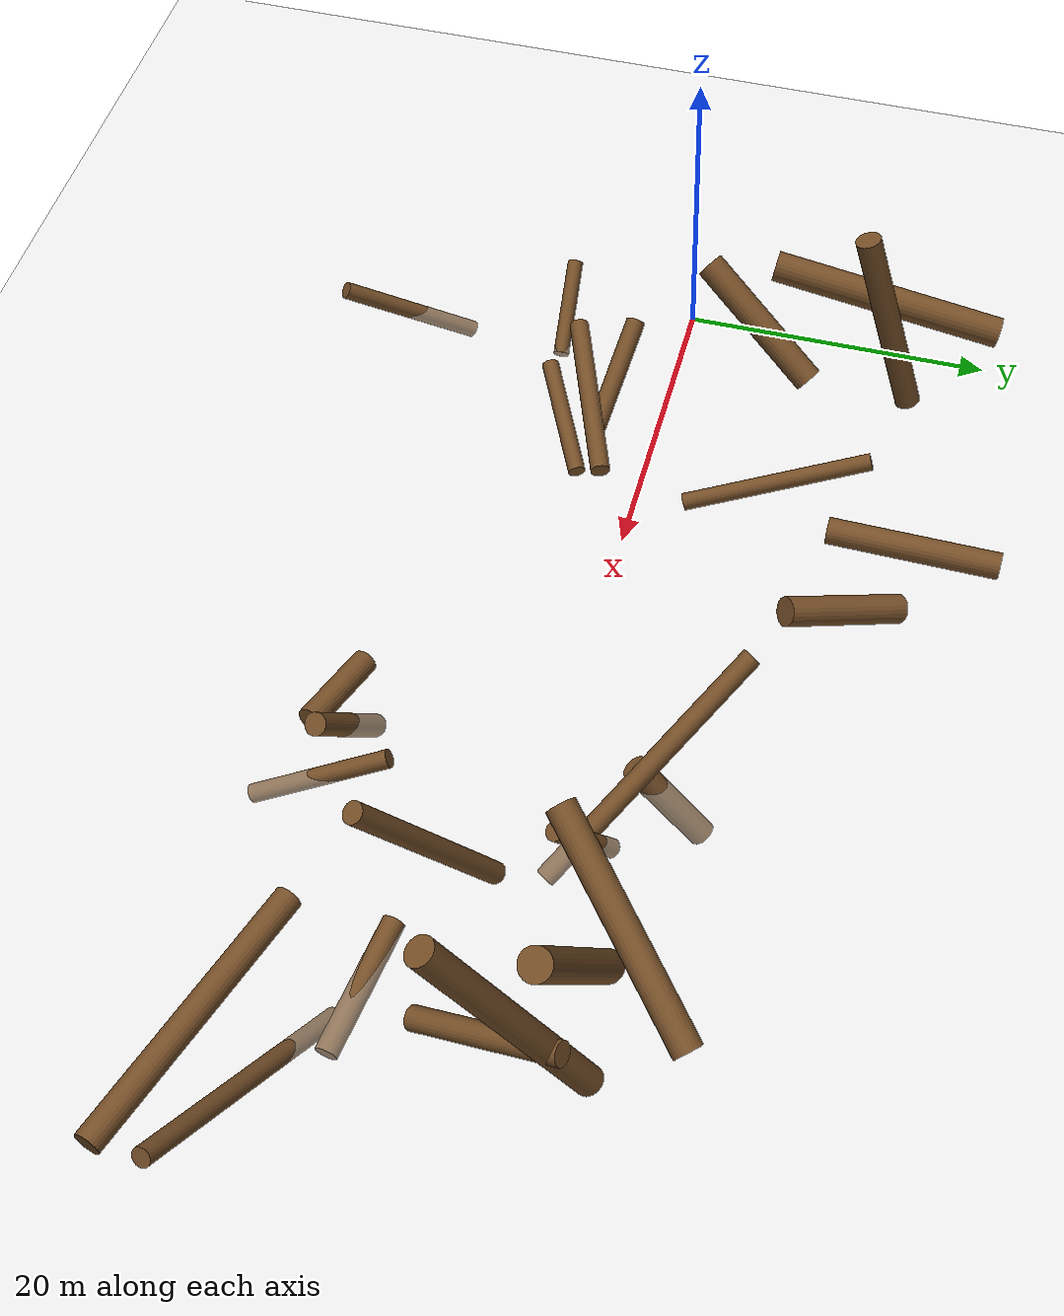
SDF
<sdf version='1.7'>
            <world name='default'>
                <light name='sun' type='directional'>
                <cast_shadows>1</cast_shadows>
                <pose>0 0 10 0 -0 0</pose>
                <diffuse>0.8 0.8 0.8 1</diffuse>
                <specular>0.2 0.2 0.2 1</specular>
                <attenuation>
                    <range>1000</range>
                    <constant>0.9</constant>
                    <linear>0.01</linear>
                    <quadratic>0.001</quadratic>
                </attenuation>
                <direction>-0.5 0.1 -0.9</direction>
                <spot>
                    <inner_angle>0</inner_angle>
                    <outer_angle>0</outer_angle>
                    <falloff>0</falloff>
                </spot>
                </light>
                <model name='ground_plane'>
                <static>1</static>
                <link name='link'>
                    <collision name='collision'>
                    <geometry>
                        <plane>
                        <normal>0 0 1</normal>
                        <size>100 100</size>
                        </plane>
                    </geometry>
                    <surface>
                        <contact>
                        <collide_bitmask>65535</collide_bitmask>
                        <ode/>
                        </contact>
                        <friction>
                        <ode>
                            <mu>100</mu>
                            <mu2>50</mu2>
                        </ode>
                        <torsional>
                            <ode/>
                        </torsional>
                        </friction>
                        <bounce/>
                    </surface>
                    <max_contacts>10</max_contacts>
                    </collision>
                    <visual name='visual'>
                    <cast_shadows>0</cast_shadows>
                    <geometry>
                        <plane>
                        <normal>0 0 1</normal>
                        <size>100 100</size>
                        </plane>
                    </geometry>
                    <material>
                        <script>
                        <uri>file://media/materials/scripts/gazebo.material</uri>
                        <name>Gazebo/Grey</name>
                        </script>
                    </material>
                    </visual>
                    <self_collide>0</self_collide>
                    <enable_wind>0</enable_wind>
                    <kinematic>0</kinematic>
                </link>
                </model>
                <gravity>0 0 -9.8</gravity>
                <magnetic_field>6e-06 2.3e-05 -4.2e-05</magnetic_field>
                <atmosphere type='adiabatic'/>
                <physics type='ode'>
                <max_step_size>0.001</max_step_size>
                <real_time_factor>1</real_time_factor>
                <real_time_update_rate>1000</real_time_update_rate>
                </physics>
                <scene>
                <ambient>0.4 0.4 0.4 1</ambient>
                <background>0.7 0.7 0.7 1</background>
                <shadows>1</shadows>
                </scene>
                <wind/>
                <spherical_coordinates>
                <surface_model>EARTH_WGS84</surface_model>
                <latitude_deg>0</latitude_deg>
                <longitude_deg>0</longitude_deg>
                <elevation>0</elevation>
                <heading_deg>0</heading_deg>
                </spherical_coordinates>
                <model name='cylinder_1'>
      <static>1</static>
      <link name='link'>
        <pose frame=''>0 0 0.1 0 -0 0</pose>
        <collision name='collision_trunk'>
          <pose frame=''>0 0 2 0 -0 0</pose>
          <geometry>
            <cylinder>
              <radius>0.788835633685678</radius>
              <length>5.665362583455713</length>
            </cylinder>
          </geometry>
        </collision>
        <visual name='trunk'>
          <pose frame=''>0 0 2 0 -0 0</pose>
          <geometry>
            <cylinder>
              <radius>0.788835633685678</radius>
              <length>5.665362583455713</length>
            </cylinder>
          </geometry>
          <material>
            <script>
              <uri>model://tree_simple/scripts</uri>
              <uri>model://tree_simple/materials/textures</uri>
              <name>TreeSimple/Trunk</name>
            </script>
          </material>
        </visual>
        <self_collide>0</self_collide>
        <kinematic>0</kinematic>
      </link>
      <pose frame=''>37.52955259395762 -14.071624767836042 0.9301232757591773 139.45076508175987 104.72209730949497 80.14829763471432</pose>
    </model>
    <model name='cylinder_2'>
      <static>1</static>
      <link name='link'>
        <pose frame=''>0 0 0.1 0 -0 0</pose>
        <collision name='collision_trunk'>
          <pose frame=''>0 0 2 0 -0 0</pose>
          <geometry>
            <cylinder>
              <radius>0.5484385414170945</radius>
          <length>12.20475519180299</length>
            </cylinder>
          </geometry>
        </collision>
        <visual name='trunk'>
          <pose frame=''>0 0 2 0 -0 0</pose>
          <geometry>
            <cylinder>
              <radius>0.5484385414170945</radius>
          <length>12.20475519180299</length>
            </cylinder>
          </geometry>
          <material>
            <script>
              <uri>model://tree_simple/scripts</uri>
              <uri>model://tree_simple/materials/textures</uri>
              <name>TreeSimple/Trunk</name>
            </script>
          </material>
        </visual>
        <self_collide>0</self_collide>
        <kinematic>0</kinematic>
      </link>
      <pose frame=''>13.882796074149844 10.681368055011081 2.438557626206517 11.584885372144708 178.00395329252245 54.22970105900112</pose>
    </model>
    <model name='cylinder_3'>
      <static>1</static>
      <link name='link'>
        <pose frame=''>0 0 0.1 0 -0 0</pose>
        <collision name='collision_trunk'>
          <pose frame=''>0 0 2 0 -0 0</pose>
          <geometry>
            <cylinder>
              <radius>0.5157186908227087</radius>
          <length>6.618720287077109</length>
            </cylinder>
          </geometry>
        </collision>
        <visual name='trunk'>
          <pose frame=''>0 0 2 0 -0 0</pose>
          <geometry>
            <cylinder>
              <radius>0.5157186908227087</radius>
          <length>6.618720287077109</length>
            </cylinder>
          </geometry>
          <material>
            <script>
              <uri>model://tree_simple/scripts</uri>
              <uri>model://tree_simple/materials/textures</uri>
              <name>TreeSimple/Trunk</name>
            </script>
          </material>
        </visual>
        <self_collide>0</self_collide>
        <kinematic>0</kinematic>
      </link>
      <pose frame=''>0.059093723049348235 -8.544475060347354 1.8358675166335177 26.22227075542884 178.71263809387543 83.15769782488621</pose>
    </model>
    <model name='cylinder_4'>
      <static>1</static>
      <link name='link'>
        <pose frame=''>0 0 0.1 0 -0 0</pose>
        <collision name='collision_trunk'>
          <pose frame=''>0 0 2 0 -0 0</pose>
          <geometry>
            <cylinder>
              <radius>0.6793858327265649</radius>
          <length>8.197996675658015</length>
            </cylinder>
          </geometry>
        </collision>
        <visual name='trunk'>
          <pose frame=''>0 0 2 0 -0 0</pose>
          <geometry>
            <cylinder>
              <radius>0.6793858327265649</radius>
          <length>8.197996675658015</length>
            </cylinder>
          </geometry>
          <material>
            <script>
              <uri>model://tree_simple/scripts</uri>
              <uri>model://tree_simple/materials/textures</uri>
              <name>TreeSimple/Trunk</name>
            </script>
          </material>
        </visual>
        <self_collide>0</self_collide>
        <kinematic>0</kinematic>
      </link>
      <pose frame=''>55.09637686259887 -6.692293657797887 -0.8844331655421058 30.245405276604615 82.97427870514161 20.64320669222688</pose>
    </model>
    <model name='cylinder_5'>
      <static>1</static>
      <link name='link'>
        <pose frame=''>0 0 0.1 0 -0 0</pose>
        <collision name='collision_trunk'>
          <pose frame=''>0 0 2 0 -0 0</pose>
          <geometry>
            <cylinder>
              <radius>0.709423805103402</radius>
          <length>7.388062247913435</length>
            </cylinder>
          </geometry>
        </collision>
        <visual name='trunk'>
          <pose frame=''>0 0 2 0 -0 0</pose>
          <geometry>
            <cylinder>
              <radius>0.709423805103402</radius>
          <length>7.388062247913435</length>
            </cylinder>
          </geometry>
          <material>
            <script>
              <uri>model://tree_simple/scripts</uri>
              <uri>model://tree_simple/materials/textures</uri>
              <name>TreeSimple/Trunk</name>
            </script>
          </material>
        </visual>
        <self_collide>0</self_collide>
        <kinematic>0</kinematic>
      </link>
      <pose frame=''>36.12401512144128 -11.99644755275659 -1.8142475366728288 37.20692470158414 25.59717929171728 86.71992369433333</pose>
    </model>
    <model name='cylinder_6'>
      <static>1</static>
      <link name='link'>
        <pose frame=''>0 0 0.1 0 -0 0</pose>
        <collision name='collision_trunk'>
          <pose frame=''>0 0 2 0 -0 0</pose>
          <geometry>
            <cylinder>
              <radius>0.6255796434688252</radius>
          <length>8.098267542547692</length>
            </cylinder>
          </geometry>
        </collision>
        <visual name='trunk'>
          <pose frame=''>0 0 2 0 -0 0</pose>
          <geometry>
            <cylinder>
              <radius>0.6255796434688252</radius>
          <length>8.098267542547692</length>
            </cylinder>
          </geometry>
          <material>
            <script>
              <uri>model://tree_simple/scripts</uri>
              <uri>model://tree_simple/materials/textures</uri>
              <name>TreeSimple/Trunk</name>
            </script>
          </material>
        </visual>
        <self_collide>0</self_collide>
        <kinematic>0</kinematic>
      </link>
      <pose frame=''>10.300307776968708 -3.6835641538288186 1.1154778473464315 90.53804110555105 98.39158820286451 3.6427157911206742</pose>
    </model>
    <model name='cylinder_7'>
      <static>1</static>
      <link name='link'>
        <pose frame=''>0 0 0.1 0 -0 0</pose>
        <collision name='collision_trunk'>
          <pose frame=''>0 0 2 0 -0 0</pose>
          <geometry>
            <cylinder>
              <radius>0.7809814554098127</radius>
          <length>16.042340130387316</length>
            </cylinder>
          </geometry>
        </collision>
        <visual name='trunk'>
          <pose frame=''>0 0 2 0 -0 0</pose>
          <geometry>
            <cylinder>
              <radius>0.7809814554098127</radius>
          <length>16.042340130387316</length>
            </cylinder>
          </geometry>
          <material>
            <script>
              <uri>model://tree_simple/scripts</uri>
              <uri>model://tree_simple/materials/textures</uri>
              <name>TreeSimple/Trunk</name>
            </script>
          </material>
        </visual>
        <self_collide>0</self_collide>
        <kinematic>0</kinematic>
      </link>
      <pose frame=''>57.631027273924786 -11.679287082652632 6.197067593942068 67.56579490677177 43.55188328034996 136.34421540767917</pose>
    </model>
    <model name='cylinder_8'>
      <static>1</static>
      <link name='link'>
        <pose frame=''>0 0 0.1 0 -0 0</pose>
        <collision name='collision_trunk'>
          <pose frame=''>0 0 2 0 -0 0</pose>
          <geometry>
            <cylinder>
              <radius>0.8154356444133817</radius>
          <length>13.148408546951</length>
            </cylinder>
          </geometry>
        </collision>
        <visual name='trunk'>
          <pose frame=''>0 0 2 0 -0 0</pose>
          <geometry>
            <cylinder>
              <radius>0.8154356444133817</radius>
          <length>13.148408546951</length>
            </cylinder>
          </geometry>
          <material>
            <script>
              <uri>model://tree_simple/scripts</uri>
              <uri>model://tree_simple/materials/textures</uri>
              <name>TreeSimple/Trunk</name>
            </script>
          </material>
        </visual>
        <self_collide>0</self_collide>
        <kinematic>0</kinematic>
      </link>
      <pose frame=''>4.5580541888725 14.257497097649349 5.383944946552051 65.69245732384526 28.41818091940444 74.6839560567215</pose>
    </model>
    <model name='cylinder_9'>
      <static>1</static>
      <link name='link'>
        <pose frame=''>0 0 0.1 0 -0 0</pose>
        <collision name='collision_trunk'>
          <pose frame=''>0 0 2 0 -0 0</pose>
          <geometry>
            <cylinder>
              <radius>0.8172826848385228</radius>
          <length>6.661672241097511</length>
            </cylinder>
          </geometry>
        </collision>
        <visual name='trunk'>
          <pose frame=''>0 0 2 0 -0 0</pose>
          <geometry>
            <cylinder>
              <radius>0.8172826848385228</radius>
          <length>6.661672241097511</length>
            </cylinder>
          </geometry>
          <material>
            <script>
              <uri>model://tree_simple/scripts</uri>
              <uri>model://tree_simple/materials/textures</uri>
              <name>TreeSimple/Trunk</name>
            </script>
          </material>
        </visual>
        <self_collide>0</self_collide>
        <kinematic>0</kinematic>
      </link>
      <pose frame=''>37.05238392888578 8.444693470179779 -3.1850523191908113 21.491630169014595 53.88698806271143 43.20660333427925</pose>
    </model>
    <model name='cylinder_10'>
      <static>1</static>
      <link name='link'>
        <pose frame=''>0 0 0.1 0 -0 0</pose>
        <collision name='collision_trunk'>
          <pose frame=''>0 0 2 0 -0 0</pose>
          <geometry>
            <cylinder>
              <radius>0.6449798217696618</radius>
          <length>13.522457536329448</length>
            </cylinder>
          </geometry>
        </collision>
        <visual name='trunk'>
          <pose frame=''>0 0 2 0 -0 0</pose>
          <geometry>
            <cylinder>
              <radius>0.6449798217696618</radius>
          <length>13.522457536329448</length>
            </cylinder>
          </geometry>
          <material>
            <script>
              <uri>model://tree_simple/scripts</uri>
              <uri>model://tree_simple/materials/textures</uri>
              <name>TreeSimple/Trunk</name>
            </script>
          </material>
        </visual>
        <self_collide>0</self_collide>
        <kinematic>0</kinematic>
      </link>
      <pose frame=''>46.885405039643956 -2.731845088928033 4.999134858844929 25.51557160047218 43.57131441881391 83.1318400751856</pose>
    </model>
    <model name='cylinder_11'>
      <static>1</static>
      <link name='link'>
        <pose frame=''>0 0 0.1 0 -0 0</pose>
        <collision name='collision_trunk'>
          <pose frame=''>0 0 2 0 -0 0</pose>
          <geometry>
            <cylinder>
              <radius>0.5827999145553537</radius>
          <length>6.097182619109187</length>
            </cylinder>
          </geometry>
        </collision>
        <visual name='trunk'>
          <pose frame=''>0 0 2 0 -0 0</pose>
          <geometry>
            <cylinder>
              <radius>0.5827999145553537</radius>
          <length>6.097182619109187</length>
            </cylinder>
          </geometry>
          <material>
            <script>
              <uri>model://tree_simple/scripts</uri>
              <uri>model://tree_simple/materials/textures</uri>
              <name>TreeSimple/Trunk</name>
            </script>
          </material>
        </visual>
        <self_collide>0</self_collide>
        <kinematic>0</kinematic>
      </link>
      <pose frame=''>42.9010173780176 2.48568193326404 2.608545107443657 141.6742045086935 170.19910526931022 175.65597329926183</pose>
    </model>
        <model name='cylinder_12'>
      <static>1</static>
      <link name='link'>
        <pose frame=''>0 0 0.1 0 -0 0</pose>
        <collision name='collision_trunk'>
          <pose frame=''>0 0 2 0 -0 0</pose>
          <geometry>
            <cylinder>
              <radius>0.8276813208249869</radius>
          <length>10.649339828604258</length>
            </cylinder>
          </geometry>
        </collision>
        <visual name='trunk'>
          <pose frame=''>0 0 2 0 -0 0</pose>
          <geometry>
            <cylinder>
              <radius>0.8276813208249869</radius>
          <length>10.649339828604258</length>
            </cylinder>
          </geometry>
          <material>
            <script>
              <uri>model://tree_simple/scripts</uri>
              <uri>model://tree_simple/materials/textures</uri>
              <name>TreeSimple/Trunk</name>
            </script>
          </material>
        </visual>
        <self_collide>0</self_collide>
        <kinematic>0</kinematic>
      </link>
      <pose frame=''>19.009042054638982 15.970159680911465 3.635954404662952 7.836377132279122 114.98472017604105 59.657516980307</pose>
    </model>
    <model name='cylinder_13'>
      <static>1</static>
      <link name='link'>
        <pose frame=''>0 0 0.1 0 -0 0</pose>
        <collision name='collision_trunk'>
          <pose frame=''>0 0 2 0 -0 0</pose>
          <geometry>
            <cylinder>
              <radius>0.5185774871588382</radius>
          <length>7.849084351012119</length>
            </cylinder>
          </geometry>
        </collision>
        <visual name='trunk'>
          <pose frame=''>0 0 2 0 -0 0</pose>
          <geometry>
            <cylinder>
              <radius>0.5185774871588382</radius>
          <length>7.849084351012119</length>
            </cylinder>
          </geometry>
          <material>
            <script>
              <uri>model://tree_simple/scripts</uri>
              <uri>model://tree_simple/materials/textures</uri>
              <name>TreeSimple/Trunk</name>
            </script>
          </material>
        </visual>
        <self_collide>0</self_collide>
        <kinematic>0</kinematic>
      </link>
      <pose frame=''>14.832592910787106 -5.483108521474085 7.209093917053504 165.77025374075853 139.53744182078097 46.845534412018914</pose>
    </model>
    <model name='cylinder_14'>
      <static>1</static>
      <link name='link'>
        <pose frame=''>0 0 0.1 0 -0 0</pose>
        <collision name='collision_trunk'>
          <pose frame=''>0 0 2 0 -0 0</pose>
          <geometry>
            <cylinder>
              <radius>0.6234551490851301</radius>
          <length>11.672323324762406</length>
            </cylinder>
          </geometry>
        </collision>
        <visual name='trunk'>
          <pose frame=''>0 0 2 0 -0 0</pose>
          <geometry>
            <cylinder>
              <radius>0.6234551490851301</radius>
          <length>11.672323324762406</length>
            </cylinder>
          </geometry>
          <material>
            <script>
              <uri>model://tree_simple/scripts</uri>
              <uri>model://tree_simple/materials/textures</uri>
              <name>TreeSimple/Trunk</name>
            </script>
          </material>
        </visual>
        <self_collide>0</self_collide>
        <kinematic>0</kinematic>
      </link>
      <pose frame=''>12.562690941284476 -3.7912895446960917 2.0039937369039693 18.939587057353503 61.38663300894999 144.79809819286746</pose>
    </model>
    <model name='cylinder_15'>
      <static>1</static>
      <link name='link'>
        <pose frame=''>0 0 0.1 0 -0 0</pose>
        <collision name='collision_trunk'>
          <pose frame=''>0 0 2 0 -0 0</pose>
          <geometry>
            <cylinder>
              <radius>0.9995953055461</radius>
          <length>15.324566195712865</length>
            </cylinder>
          </geometry>
        </collision>
        <visual name='trunk'>
          <pose frame=''>0 0 2 0 -0 0</pose>
          <geometry>
            <cylinder>
              <radius>0.9995953055461</radius>
          <length>15.324566195712865</length>
            </cylinder>
          </geometry>
          <material>
            <script>
              <uri>model://tree_simple/scripts</uri>
              <uri>model://tree_simple/materials/textures</uri>
              <name>TreeSimple/Trunk</name>
            </script>
          </material>
        </visual>
        <self_collide>0</self_collide>
        <kinematic>0</kinematic>
      </link>
      <pose frame=''>0.01394855023619579 15.074629323882746 4.742871032750378 170.85195940349467 45.09258894515643 31.080230540849584</pose>
    </model>
    <model name='cylinder_81'>
  <static>1</static>
  <link name='link'>
    <pose frame=''>0 0 0.1 0 -0 0</pose>
    <collision name='collision_trunk'>
      <pose frame=''>0 0 2 0 -0 0</pose>
      <geometry>
        <cylinder>
          <radius>0.5653292912</radius>
          <length>16.9827518602</length>
        </cylinder>
      </geometry>
    </collision>
    <visual name='trunk'>
      <pose frame=''>0 0 2 0 -0 0</pose>
      <geometry>
        <cylinder>
          <radius>0.5653292912</radius>
          <length>16.9827518602</length>
        </cylinder>
      </geometry>
      <material>
        <script>
          <uri>model://tree_simple/scripts</uri>
          <uri>model://tree_simple/materials/textures</uri>
          <name>TreeSimple/Trunk</name>
        </script>
      </material>
    </visual>
    <self_collide>0</self_collide>
    <kinematic>0</kinematic>
  </link>
  <pose frame=''>59.0876934044 -9.3126008983 0.6579022446 284.9454906975 335.9325680404 215.0642034741</pose>
</model>

<model name='cylinder_82'>
  <static>1</static>
  <link name='link'>
    <pose frame=''>0 0 0.1 0 -0 0</pose>
    <collision name='collision_trunk'>
      <pose frame=''>0 0 2 0 -0 0</pose>
      <geometry>
        <cylinder>
          <radius>0.8677297792</radius>
          <length>13.8965344067</length>
        </cylinder>
      </geometry>
    </collision>
    <visual name='trunk'>
      <pose frame=''>0 0 2 0 -0 0</pose>
      <geometry>
        <cylinder>
          <radius>0.8677297792</radius>
          <length>13.8965344067</length>
        </cylinder>
      </geometry>
      <material>
        <script>
          <uri>model://tree_simple/scripts</uri>
          <uri>model://tree_simple/materials/textures</uri>
          <name>TreeSimple/Trunk</name>
        </script>
      </material>
    </visual>
    <self_collide>0</self_collide>
    <kinematic>0</kinematic>
  </link>
  <pose frame=''>52.4828376822 9.4047480249 8.538127294 243.8470783178 339.4420950093 14.9615920246</pose>
</model>

<model name='cylinder_83'>
  <static>1</static>
  <link name='link'>
    <pose frame=''>0 0 0.1 0 -0 0</pose>
    <collision name='collision_trunk'>
      <pose frame=''>0 0 2 0 -0 0</pose>
      <geometry>
        <cylinder>
          <radius>0.9169606822</radius>
          <length>9.8396109235</length>
        </cylinder>
      </geometry>
    </collision>
    <visual name='trunk'>
      <pose frame=''>0 0 2 0 -0 0</pose>
      <geometry>
        <cylinder>
          <radius>0.9169606822</radius>
          <length>9.8396109235</length>
        </cylinder>
      </geometry>
      <material>
        <script>
          <uri>model://tree_simple/scripts</uri>
          <uri>model://tree_simple/materials/textures</uri>
          <name>TreeSimple/Trunk</name>
        </script>
      </material>
    </visual>
    <self_collide>0</self_collide>
    <kinematic>0</kinematic>
  </link>
  <pose frame=''>3.9466422317 3.7416684507 6.7947096002 74.632895509 234.8110632796 169.8203653358</pose>
</model>

<model name='cylinder_84'>
  <static>1</static>
  <link name='link'>
    <pose frame=''>0 0 0.1 0 -0 0</pose>
    <collision name='collision_trunk'>
      <pose frame=''>0 0 2 0 -0 0</pose>
      <geometry>
        <cylinder>
          <radius>0.5635382763</radius>
          <length>8.9842862529</length>
        </cylinder>
      </geometry>
    </collision>
    <visual name='trunk'>
      <pose frame=''>0 0 2 0 -0 0</pose>
      <geometry>
        <cylinder>
          <radius>0.5635382763</radius>
          <length>8.9842862529</length>
        </cylinder>
      </geometry>
      <material>
        <script>
          <uri>model://tree_simple/scripts</uri>
          <uri>model://tree_simple/materials/textures</uri>
          <name>TreeSimple/Trunk</name>
        </script>
      </material>
    </visual>
    <self_collide>0</self_collide>
    <kinematic>0</kinematic>
  </link>
  <pose frame=''>41.5081209875 -14.7376370205 -1.1596290842 329.4876185807 328.6996108814 268.4852062846</pose>
</model>

<model name='cylinder_85'>
  <static>1</static>
  <link name='link'>
    <pose frame=''>0 0 0.1 0 -0 0</pose>
    <collision name='collision_trunk'>
      <pose frame=''>0 0 2 0 -0 0</pose>
      <geometry>
        <cylinder>
          <radius>0.6891871371</radius>
          <length>9.3454612593</length>
        </cylinder>
      </geometry>
    </collision>
    <visual name='trunk'>
      <pose frame=''>0 0 2 0 -0 0</pose>
      <geometry>
        <cylinder>
          <radius>0.6891871371</radius>
          <length>9.3454612593</length>
        </cylinder>
      </geometry>
      <material>
        <script>
          <uri>model://tree_simple/scripts</uri>
          <uri>model://tree_simple/materials/textures</uri>
          <name>TreeSimple/Trunk</name>
        </script>
      </material>
    </visual>
    <self_collide>0</self_collide>
    <kinematic>0</kinematic>
  </link>
  <pose frame=''>57.5757960569 4.3636488052 7.4149661328 239.5022299315 127.7758508126 74.4643242009</pose>
</model>

<model name='cylinder_86'>
  <static>1</static>
  <link name='link'>
    <pose frame=''>0 0 0.1 0 -0 0</pose>
    <collision name='collision_trunk'>
      <pose frame=''>0 0 2 0 -0 0</pose>
      <geometry>
        <cylinder>
          <radius>0.9225919717</radius>
          <length>11.4389677805</length>
        </cylinder>
      </geometry>
    </collision>
    <visual name='trunk'>
      <pose frame=''>0 0 2 0 -0 0</pose>
      <geometry>
        <cylinder>
          <radius>0.9225919717</radius>
          <length>11.4389677805</length>
        </cylinder>
      </geometry>
      <material>
        <script>
          <uri>model://tree_simple/scripts</uri>
          <uri>model://tree_simple/materials/textures</uri>
          <name>TreeSimple/Trunk</name>
        </script>
      </material>
    </visual>
    <self_collide>0</self_collide>
    <kinematic>0</kinematic>
  </link>
  <pose frame=''>53.0630087117 6.6214798332 8.2170868633 25.4901427649 112.6929736346 303.6225098481</pose>
</model>

<model name='cylinder_87'>
  <static>1</static>
  <link name='link'>
    <pose frame=''>0 0 0.1 0 -0 0</pose>
    <collision name='collision_trunk'>
      <pose frame=''>0 0 2 0 -0 0</pose>
      <geometry>
        <cylinder>
          <radius>0.6281779837</radius>
          <length>17.3138708444</length>
        </cylinder>
      </geometry>
    </collision>
    <visual name='trunk'>
      <pose frame=''>0 0 2 0 -0 0</pose>
      <geometry>
        <cylinder>
          <radius>0.6281779837</radius>
          <length>17.3138708444</length>
        </cylinder>
      </geometry>
      <material>
        <script>
          <uri>model://tree_simple/scripts</uri>
          <uri>model://tree_simple/materials/textures</uri>
          <name>TreeSimple/Trunk</name>
        </script>
      </material>
    </visual>
    <self_collide>0</self_collide>
    <kinematic>0</kinematic>
  </link>
  <pose frame=''>35.575752184 7.0484014067 2.8749791283 356.1032458233 308.3151867465 217.5257567381</pose>
</model>

<model name='cylinder_88'>
  <static>1</static>
  <link name='link'>
    <pose frame=''>0 0 0.1 0 -0 0</pose>
    <collision name='collision_trunk'>
      <pose frame=''>0 0 2 0 -0 0</pose>
      <geometry>
        <cylinder>
          <radius>0.8310286667</radius>
          <length>16.1976707125</length>
        </cylinder>
      </geometry>
    </collision>
    <visual name='trunk'>
      <pose frame=''>0 0 2 0 -0 0</pose>
      <geometry>
        <cylinder>
          <radius>0.8310286667</radius>
          <length>16.1976707125</length>
        </cylinder>
      </geometry>
      <material>
        <script>
          <uri>model://tree_simple/scripts</uri>
          <uri>model://tree_simple/materials/textures</uri>
          <name>TreeSimple/Trunk</name>
        </script>
      </material>
    </visual>
    <self_collide>0</self_collide>
    <kinematic>0</kinematic>
  </link>
  <pose frame=''>57.9489441033 5.1402431079 9.4719615725 31.2541562916 294.8614304108 21.0312422895</pose>
</model>

<model name='cylinder_89'>
  <static>1</static>
  <link name='link'>
    <pose frame=''>0 0 0.1 0 -0 0</pose>
    <collision name='collision_trunk'>
      <pose frame=''>0 0 2 0 -0 0</pose>
      <geometry>
        <cylinder>
          <radius>0.5603547243</radius>
          <length>10.1387670551</length>
        </cylinder>
      </geometry>
    </collision>
    <visual name='trunk'>
      <pose frame=''>0 0 2 0 -0 0</pose>
      <geometry>
        <cylinder>
          <radius>0.5603547243</radius>
          <length>10.1387670551</length>
        </cylinder>
      </geometry>
      <material>
        <script>
          <uri>model://tree_simple/scripts</uri>
          <uri>model://tree_simple/materials/textures</uri>
          <name>TreeSimple/Trunk</name>
        </script>
      </material>
    </visual>
    <self_collide>0</self_collide>
    <kinematic>0</kinematic>
  </link>
  <pose frame=''>3.0935186388 -17.6094056196 -1.1746317322 6.3565865212 107.7851336486 306.8708865801</pose>
</model>

<model name='cylinder_90'>
  <static>1</static>
  <link name='link'>
    <pose frame=''>0 0 0.1 0 -0 0</pose>
    <collision name='collision_trunk'>
      <pose frame=''>0 0 2 0 -0 0</pose>
      <geometry>
        <cylinder>
          <radius>0.8610093578</radius>
          <length>7.9575112793</length>
        </cylinder>
      </geometry>
    </collision>
    <visual name='trunk'>
      <pose frame=''>0 0 2 0 -0 0</pose>
      <geometry>
        <cylinder>
          <radius>0.8610093578</radius>
          <length>7.9575112793</length>
        </cylinder>
      </geometry>
      <material>
        <script>
          <uri>model://tree_simple/scripts</uri>
          <uri>model://tree_simple/materials/textures</uri>
          <name>TreeSimple/Trunk</name>
        </script>
      </material>
    </visual>
    <self_collide>0</self_collide>
    <kinematic>0</kinematic>
  </link>
  <pose frame=''>26.5975774214 16.6038766001 6.8309078344 300.4824754212 12.0755827399 229.7002642652</pose>
</model>
            </world>
            </sdf>
